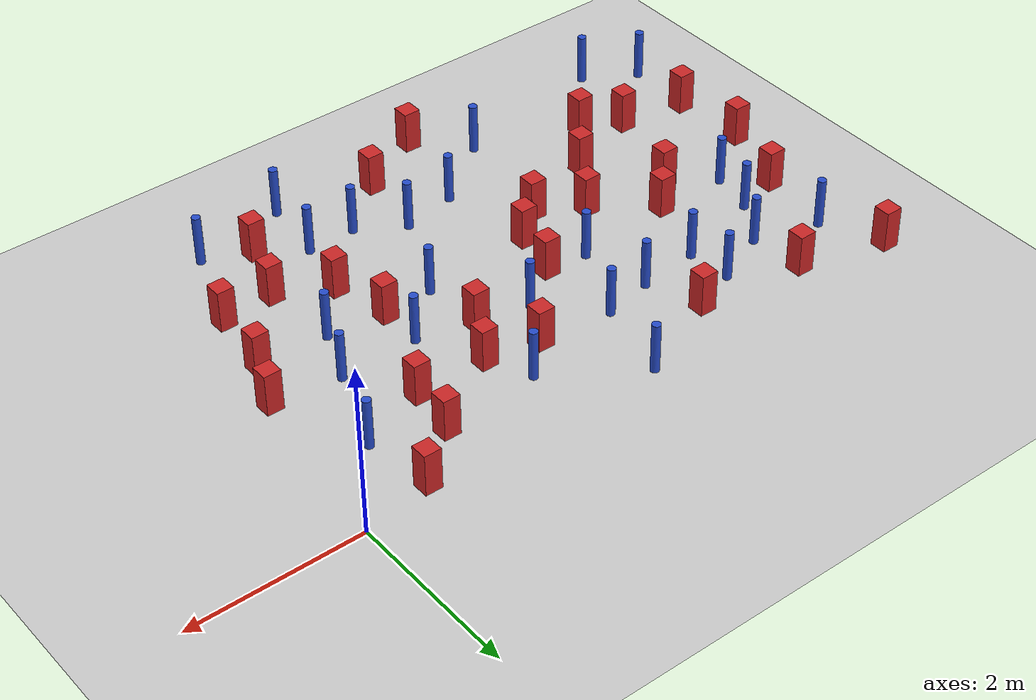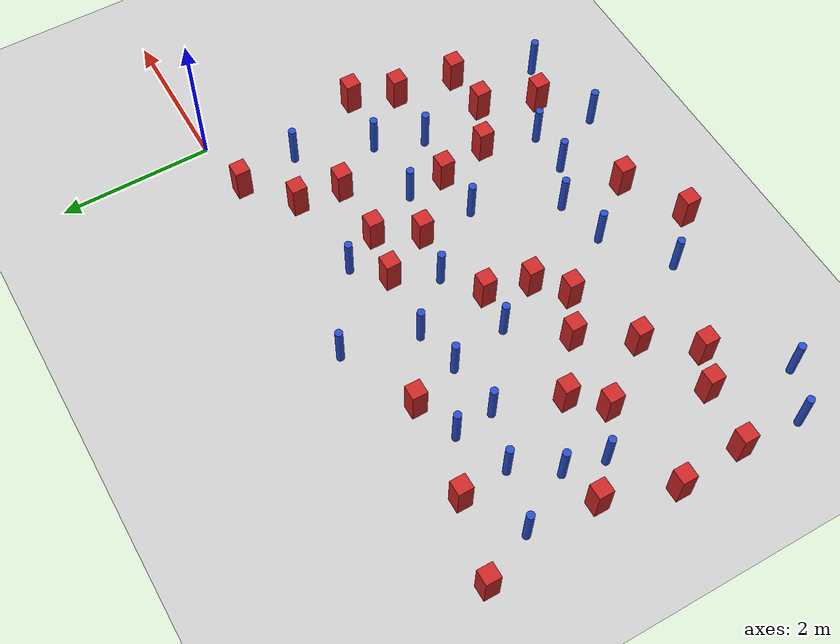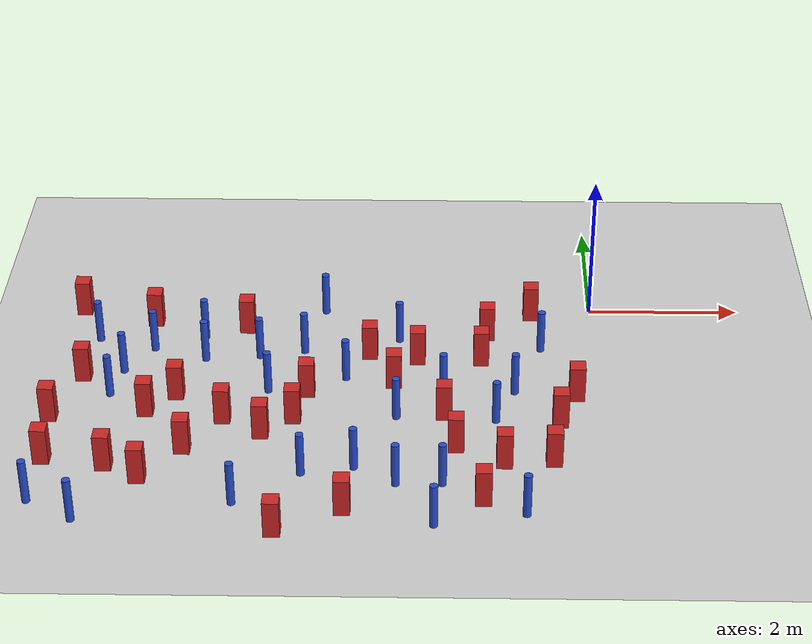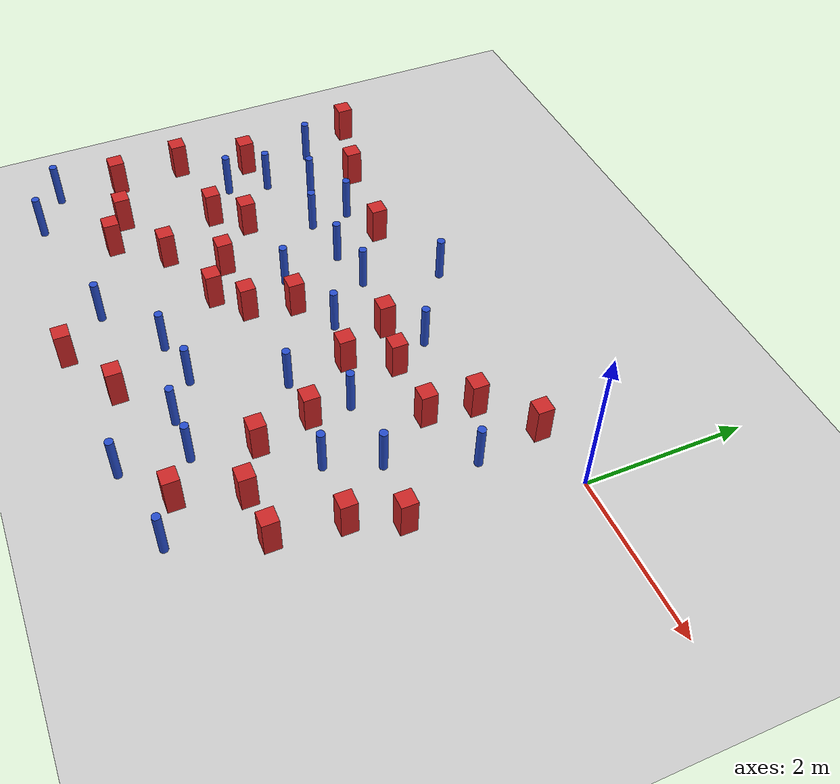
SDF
<sdf version="1.6">
 <world name="default">
  <model name="ground_plane">
   <static>1</static>
   <link name="link">
    <collision name="collision">
     <geometry><plane><normal>0 0 1</normal><size>100 100</size></plane></geometry>
     <surface><friction><ode><mu>100</mu><mu2>50</mu2></ode></friction></surface>
    </collision>
    <visual name="visual">
     <cast_shadows>0</cast_shadows>
     <geometry><plane><normal>0 0 1</normal><size>100 100</size></plane></geometry>
     <material>
      <ambient>1.0 1.0 1.0 1.0</ambient>
      <diffuse>0.8 0.8 0.8 1.0</diffuse>
      <specular>0.01 0.01 0.01 1.000000</specular>
     </material>
    </visual>
   </link>
  </model>
  <model name="square_post_obstacle6">
   <static>true</static>
   <pose>-5.69873190846 -3.81089866101 8.22691968438e-08 7.2212513382e-06 -7.54495500217e-07 2.29674213826e-05</pose>
   <link name="link">
    <pose>0 0 0.25 0 -0 0</pose>
    <inertial>
     <mass>100</mass>
     <inertia>
      <ixx>0.166667</ixx>
      <ixy>0</ixy>
      <ixz>0</ixz>
      <iyy>0.166667</iyy>
      <iyz>0</iyz>
      <izz>0.166667</izz>
     </inertia>
    </inertial>
    <collision name="collision"><geometry><box><size>.2 .2 .5</size></box></geometry></collision>
    <visual name="visual">
     <geometry><box><size>.2 .2 .5</size></box></geometry>
     <material>
      <script><name>Gazebo/Red</name><uri>file://media/materials/scripts/gazebo.material</uri></script>
     </material>
    </visual>
   </link>
  </model>
  <model name="pole_obstacle7">
   <static>true</static>
   <pose>-4.51328137769 -4.27017657904 2.88873142074e-08 -9.90536690842e-09 4.60219948965e-07 -1.20965994976e-07</pose>
   <link name="link">
    <pose>0 0 0.3 0 -0 0</pose>
    <inertial>
     <mass>1</mass>
     <inertia><ixx>0.145833</ixx><ixy>0</ixy><ixz>0</ixz><iyy>0.145833</iyy><iyz>0</iyz><izz>0.125</izz></inertia>
    </inertial>
    <collision name="collision">
     <geometry><cylinder><radius>0.05</radius><length>.6</length></cylinder></geometry>
    </collision>
    <visual name="visual">
     <geometry><cylinder><radius>0.05</radius><length>.6</length></cylinder></geometry>
     <material>
      <script><name>Gazebo/Blue</name><uri>file://media/materials/scripts/gazebo.material</uri></script>
     </material>
    </visual>
   </link>
  </model>
  <model name="square_post_obstacle9">
   <static>true</static>
   <pose>-0.614013611077 -3.40406688637 8.22691968438e-08 7.2212513382e-06 -7.54495500217e-07 2.29674213826e-05</pose>
   <link name="link">
    <pose>0 0 0.25 0 -0 0</pose>
    <inertial>
     <mass>100</mass>
     <inertia>
      <ixx>0.166667</ixx>
      <ixy>0</ixy>
      <ixz>0</ixz>
      <iyy>0.166667</iyy>
      <iyz>0</iyz>
      <izz>0.166667</izz>
     </inertia>
    </inertial>
    <collision name="collision"><geometry><box><size>.2 .2 .5</size></box></geometry></collision>
    <visual name="visual">
     <geometry><box><size>.2 .2 .5</size></box></geometry>
     <material>
      <script><name>Gazebo/Red</name><uri>file://media/materials/scripts/gazebo.material</uri></script>
     </material>
    </visual>
   </link>
  </model>
  <model name="square_post_obstacle10">
   <static>true</static>
   <pose>-0.503892283622 -2.59505104395 8.22691968438e-08 7.2212513382e-06 -7.54495500217e-07 2.29674213826e-05</pose>
   <link name="link">
    <pose>0 0 0.25 0 -0 0</pose>
    <inertial>
     <mass>100</mass>
     <inertia>
      <ixx>0.166667</ixx>
      <ixy>0</ixy>
      <ixz>0</ixz>
      <iyy>0.166667</iyy>
      <iyz>0</iyz>
      <izz>0.166667</izz>
     </inertia>
    </inertial>
    <collision name="collision"><geometry><box><size>.2 .2 .5</size></box></geometry></collision>
    <visual name="visual">
     <geometry><box><size>.2 .2 .5</size></box></geometry>
     <material>
      <script><name>Gazebo/Red</name><uri>file://media/materials/scripts/gazebo.material</uri></script>
     </material>
    </visual>
   </link>
  </model>
  <model name="pole_obstacle8">
   <static>true</static>
   <pose>-2.55678211744 -3.87267501913 2.88873142074e-08 -9.90536690232e-09 4.6021994898e-07 -1.20965994968e-07</pose>
   <link name="link">
    <pose>0 0 0.3 0 -0 0</pose>
    <inertial>
     <mass>1</mass>
     <inertia><ixx>0.145833</ixx><ixy>0</ixy><ixz>0</ixz><iyy>0.145833</iyy><iyz>0</iyz><izz>0.125</izz></inertia>
    </inertial>
    <collision name="collision">
     <geometry><cylinder><radius>0.05</radius><length>.6</length></cylinder></geometry>
    </collision>
    <visual name="visual">
     <geometry><cylinder><radius>0.05</radius><length>.6</length></cylinder></geometry>
     <material>
      <script><name>Gazebo/Blue</name><uri>file://media/materials/scripts/gazebo.material</uri></script>
     </material>
    </visual>
   </link>
  </model>
  <model name="square_post_obstacle26">
   <static>true</static>
   <pose>-1.82232135898 -3.12841013178 8.22691968438e-08 7.2212513382e-06 -7.54495500217e-07 2.29674213826e-05</pose>
   <link name="link">
    <pose>0 0 0.25 0 -0 0</pose>
    <inertial>
     <mass>100</mass>
     <inertia>
      <ixx>0.166667</ixx>
      <ixy>0</ixy>
      <ixz>0</ixz>
      <iyy>0.166667</iyy>
      <iyz>0</iyz>
      <izz>0.166667</izz>
     </inertia>
    </inertial>
    <collision name="collision"><geometry><box><size>.2 .2 .5</size></box></geometry></collision>
    <visual name="visual">
     <geometry><box><size>.2 .2 .5</size></box></geometry>
     <material>
      <script><name>Gazebo/Red</name><uri>file://media/materials/scripts/gazebo.material</uri></script>
     </material>
    </visual>
   </link>
  </model>
  <model name="pole_obstacle18">
   <static>true</static>
   <pose>-4.24357892831 -1.94384267663 2.88873142074e-08 -9.90536689445e-09 4.60219948999e-07 -1.20965994956e-07</pose>
   <link name="link">
    <pose>0 0 0.3 0 -0 0</pose>
    <inertial>
     <mass>1</mass>
     <inertia><ixx>0.145833</ixx><ixy>0</ixy><ixz>0</ixz><iyy>0.145833</iyy><iyz>0</iyz><izz>0.125</izz></inertia>
    </inertial>
    <collision name="collision">
     <geometry><cylinder><radius>0.05</radius><length>.6</length></cylinder></geometry>
    </collision>
    <visual name="visual">
     <geometry><cylinder><radius>0.05</radius><length>.6</length></cylinder></geometry>
     <material>
      <script><name>Gazebo/Blue</name><uri>file://media/materials/scripts/gazebo.material</uri></script>
     </material>
    </visual>
   </link>
  </model>
  <model name="pole_obstacle25">
   <static>true</static>
   <pose>-3.82425622848 -1.03552538022 2.88873142074e-08 -9.90536691093e-09 4.60219948959e-07 -1.20965994982e-07</pose>
   <link name="link">
    <pose>0 0 0.3 0 -0 0</pose>
    <inertial>
     <mass>1</mass>
     <inertia><ixx>0.145833</ixx><ixy>0</ixy><ixz>0</ixz><iyy>0.145833</iyy><iyz>0</iyz><izz>0.125</izz></inertia>
    </inertial>
    <collision name="collision">
     <geometry><cylinder><radius>0.05</radius><length>.6</length></cylinder></geometry>
    </collision>
    <visual name="visual">
     <geometry><cylinder><radius>0.05</radius><length>.6</length></cylinder></geometry>
     <material>
      <script><name>Gazebo/Blue</name><uri>file://media/materials/scripts/gazebo.material</uri></script>
     </material>
    </visual>
   </link>
  </model>
  <model name="pole_obstacle26">
   <static>true</static>
   <pose>-5.17065001032 -0.723781623459 2.88873142074e-08 -9.90536689837e-09 4.60219948989e-07 -1.2096599496e-07</pose>
   <link name="link">
    <pose>0 0 0.3 0 -0 0</pose>
    <inertial>
     <mass>1</mass>
     <inertia><ixx>0.145833</ixx><ixy>0</ixy><ixz>0</ixz><iyy>0.145833</iyy><iyz>0</iyz><izz>0.125</izz></inertia>
    </inertial>
    <collision name="collision">
     <geometry><cylinder><radius>0.05</radius><length>.6</length></cylinder></geometry>
    </collision>
    <visual name="visual">
     <geometry><cylinder><radius>0.05</radius><length>.6</length></cylinder></geometry>
     <material>
      <script><name>Gazebo/Blue</name><uri>file://media/materials/scripts/gazebo.material</uri></script>
     </material>
    </visual>
   </link>
  </model>
  <model name="square_post_obstacle32">
   <static>true</static>
   <pose>-5.87408960416 -0.360027791746 8.22691968438e-08 7.2212513382e-06 -7.54495500217e-07 2.29674213826e-05</pose>
   <link name="link">
    <pose>0 0 0.25 0 -0 0</pose>
    <inertial>
     <mass>100</mass>
     <inertia>
      <ixx>0.166667</ixx>
      <ixy>0</ixy>
      <ixz>0</ixz>
      <iyy>0.166667</iyy>
      <iyz>0</iyz>
      <izz>0.166667</izz>
     </inertia>
    </inertial>
    <collision name="collision"><geometry><box><size>.2 .2 .5</size></box></geometry></collision>
    <visual name="visual">
     <geometry><box><size>.2 .2 .5</size></box></geometry>
     <material>
      <script><name>Gazebo/Red</name><uri>file://media/materials/scripts/gazebo.material</uri></script>
     </material>
    </visual>
   </link>
  </model>
  <model name="pole_obstacle33">
   <static>true</static>
   <pose>-2.57884508379 -2.49677297623 2.88873142074e-08 -9.90536690232e-09 4.6021994898e-07 -1.20965994968e-07</pose>
   <link name="link">
    <pose>0 0 0.3 0 -0 0</pose>
    <inertial>
     <mass>1</mass>
     <inertia><ixx>0.145833</ixx><ixy>0</ixy><ixz>0</ixz><iyy>0.145833</iyy><iyz>0</iyz><izz>0.125</izz></inertia>
    </inertial>
    <collision name="collision">
     <geometry><cylinder><radius>0.05</radius><length>.6</length></cylinder></geometry>
    </collision>
    <visual name="visual">
     <geometry><cylinder><radius>0.05</radius><length>.6</length></cylinder></geometry>
     <material>
      <script><name>Gazebo/Blue</name><uri>file://media/materials/scripts/gazebo.material</uri></script>
     </material>
    </visual>
   </link>
  </model>
  <model name="square_post_obstacle36">
   <static>true</static>
   <pose>-0.27187774588 -2.02333062128 8.22691968438e-08 7.22125133819e-06 -7.54495500217e-07 2.29674213826e-05</pose>
   <link name="link">
    <pose>0 0 0.25 0 -0 0</pose>
    <inertial>
     <mass>100</mass>
     <inertia>
      <ixx>0.166667</ixx>
      <ixy>0</ixy>
      <ixz>0</ixz>
      <iyy>0.166667</iyy>
      <iyz>0</iyz>
      <izz>0.166667</izz>
     </inertia>
    </inertial>
    <collision name="collision"><geometry><box><size>.2 .2 .5</size></box></geometry></collision>
    <visual name="visual">
     <geometry><box><size>.2 .2 .5</size></box></geometry>
     <material>
      <script><name>Gazebo/Red</name><uri>file://media/materials/scripts/gazebo.material</uri></script>
     </material>
    </visual>
   </link>
  </model>
  <model name="pole_obstacle40">
   <static>true</static>
   <pose>-1.98684152806 -3.86327467305 2.88873142074e-08 -9.90536689218e-09 4.60219949004e-07 -1.20965994951e-07</pose>
   <link name="link">
    <pose>0 0 0.3 0 -0 0</pose>
    <inertial>
     <mass>1</mass>
     <inertia><ixx>0.145833</ixx><ixy>0</ixy><ixz>0</ixz><iyy>0.145833</iyy><iyz>0</iyz><izz>0.125</izz></inertia>
    </inertial>
    <collision name="collision">
     <geometry><cylinder><radius>0.05</radius><length>.6</length></cylinder></geometry>
    </collision>
    <visual name="visual">
     <geometry><cylinder><radius>0.05</radius><length>.6</length></cylinder></geometry>
     <material>
      <script><name>Gazebo/Blue</name><uri>file://media/materials/scripts/gazebo.material</uri></script>
     </material>
    </visual>
   </link>
  </model>
  <model name="square_post_obstacle42">
   <static>true</static>
   <pose>-6.97750307376 -2.55895235686 8.22691968438e-08 7.2212513382e-06 -7.54495500217e-07 2.29674213826e-05</pose>
   <link name="link">
    <pose>0 0 0.25 0 -0 0</pose>
    <inertial>
     <mass>100</mass>
     <inertia>
      <ixx>0.166667</ixx>
      <ixy>0</ixy>
      <ixz>0</ixz>
      <iyy>0.166667</iyy>
      <iyz>0</iyz>
      <izz>0.166667</izz>
     </inertia>
    </inertial>
    <collision name="collision"><geometry><box><size>.2 .2 .5</size></box></geometry></collision>
    <visual name="visual">
     <geometry><box><size>.2 .2 .5</size></box></geometry>
     <material>
      <script><name>Gazebo/Red</name><uri>file://media/materials/scripts/gazebo.material</uri></script>
     </material>
    </visual>
   </link>
  </model>
  <model name="square_post_obstacle48">
   <static>true</static>
   <pose>-0.813177061935 -0.141777122832 8.22691968438e-08 7.22125133819e-06 -7.54495500217e-07 2.29674213826e-05</pose>
   <link name="link">
    <pose>0 0 0.25 0 -0 0</pose>
    <inertial>
     <mass>100</mass>
     <inertia>
      <ixx>0.166667</ixx>
      <ixy>0</ixy>
      <ixz>0</ixz>
      <iyy>0.166667</iyy>
      <iyz>0</iyz>
      <izz>0.166667</izz>
     </inertia>
    </inertial>
    <collision name="collision"><geometry><box><size>.2 .2 .5</size></box></geometry></collision>
    <visual name="visual">
     <geometry><box><size>.2 .2 .5</size></box></geometry>
     <material>
      <script><name>Gazebo/Red</name><uri>file://media/materials/scripts/gazebo.material</uri></script>
     </material>
    </visual>
   </link>
  </model>
  <model name="square_post_obstacle57">
   <static>true</static>
   <pose>-3.18073275149 -4.38452325919 8.22691968438e-08 7.2212513382e-06 -7.54495500217e-07 2.29674213826e-05</pose>
   <link name="link">
    <pose>0 0 0.25 0 -0 0</pose>
    <inertial>
     <mass>100</mass>
     <inertia>
      <ixx>0.166667</ixx>
      <ixy>0</ixy>
      <ixz>0</ixz>
      <iyy>0.166667</iyy>
      <iyz>0</iyz>
      <izz>0.166667</izz>
     </inertia>
    </inertial>
    <collision name="collision"><geometry><box><size>.2 .2 .5</size></box></geometry></collision>
    <visual name="visual">
     <geometry><box><size>.2 .2 .5</size></box></geometry>
     <material>
      <script><name>Gazebo/Red</name><uri>file://media/materials/scripts/gazebo.material</uri></script>
     </material>
    </visual>
   </link>
  </model>
  <model name="pole_obstacle55">
   <static>true</static>
   <pose>-6.57570393735 -0.790925006091 2.88873142074e-08 -9.90536689837e-09 4.60219948989e-07 -1.2096599496e-07</pose>
   <link name="link">
    <pose>0 0 0.3 0 -0 0</pose>
    <inertial>
     <mass>1</mass>
     <inertia><ixx>0.145833</ixx><ixy>0</ixy><ixz>0</ixz><iyy>0.145833</iyy><iyz>0</iyz><izz>0.125</izz></inertia>
    </inertial>
    <collision name="collision">
     <geometry><cylinder><radius>0.05</radius><length>.6</length></cylinder></geometry>
    </collision>
    <visual name="visual">
     <geometry><cylinder><radius>0.05</radius><length>.6</length></cylinder></geometry>
     <material>
      <script><name>Gazebo/Blue</name><uri>file://media/materials/scripts/gazebo.material</uri></script>
     </material>
    </visual>
   </link>
  </model>
  <model name="pole_obstacle63">
   <static>true</static>
   <pose>-0.978577156115 -4.44046367884 2.88873142074e-08 -9.90536689644e-09 4.60219948994e-07 -1.20965994957e-07</pose>
   <link name="link">
    <pose>0 0 0.3 0 -0 0</pose>
    <inertial>
     <mass>1</mass>
     <inertia><ixx>0.145833</ixx><ixy>0</ixy><ixz>0</ixz><iyy>0.145833</iyy><iyz>0</iyz><izz>0.125</izz></inertia>
    </inertial>
    <collision name="collision">
     <geometry><cylinder><radius>0.05</radius><length>.6</length></cylinder></geometry>
    </collision>
    <visual name="visual">
     <geometry><cylinder><radius>0.05</radius><length>.6</length></cylinder></geometry>
     <material>
      <script><name>Gazebo/Blue</name><uri>file://media/materials/scripts/gazebo.material</uri></script>
     </material>
    </visual>
   </link>
  </model>
  <model name="square_post_obstacle67">
   <static>true</static>
   <pose>-2.62674946512 -1.75869441663 8.22691968438e-08 7.2212513382e-06 -7.54495500217e-07 2.29674213826e-05</pose>
   <link name="link">
    <pose>0 0 0.25 0 -0 0</pose>
    <inertial>
     <mass>100</mass>
     <inertia>
      <ixx>0.166667</ixx>
      <ixy>0</ixy>
      <ixz>0</ixz>
      <iyy>0.166667</iyy>
      <iyz>0</iyz>
      <izz>0.166667</izz>
     </inertia>
    </inertial>
    <collision name="collision"><geometry><box><size>.2 .2 .5</size></box></geometry></collision>
    <visual name="visual">
     <geometry><box><size>.2 .2 .5</size></box></geometry>
     <material>
      <script><name>Gazebo/Red</name><uri>file://media/materials/scripts/gazebo.material</uri></script>
     </material>
    </visual>
   </link>
  </model>
  <model name="pole_obstacle65">
   <static>true</static>
   <pose>-0.701812578569 -0.949973994565 2.88873142074e-08 -9.90536689967e-09 4.60219948986e-07 -1.20965994963e-07</pose>
   <link name="link">
    <pose>0 0 0.3 0 -0 0</pose>
    <inertial>
     <mass>1</mass>
     <inertia><ixx>0.145833</ixx><ixy>0</ixy><ixz>0</ixz><iyy>0.145833</iyy><iyz>0</iyz><izz>0.125</izz></inertia>
    </inertial>
    <collision name="collision">
     <geometry><cylinder><radius>0.05</radius><length>.6</length></cylinder></geometry>
    </collision>
    <visual name="visual">
     <geometry><cylinder><radius>0.05</radius><length>.6</length></cylinder></geometry>
     <material>
      <script><name>Gazebo/Blue</name><uri>file://media/materials/scripts/gazebo.material</uri></script>
     </material>
    </visual>
   </link>
  </model>
  <model name="square_post_obstacle73">
   <static>true</static>
   <pose>-5.41644284443 -2.05901209092 8.22691968438e-08 7.2212513382e-06 -7.54495500217e-07 2.29674213826e-05</pose>
   <link name="link">
    <pose>0 0 0.25 0 -0 0</pose>
    <inertial>
     <mass>100</mass>
     <inertia>
      <ixx>0.166667</ixx>
      <ixy>0</ixy>
      <ixz>0</ixz>
      <iyy>0.166667</iyy>
      <iyz>0</iyz>
      <izz>0.166667</izz>
     </inertia>
    </inertial>
    <collision name="collision"><geometry><box><size>.2 .2 .5</size></box></geometry></collision>
    <visual name="visual">
     <geometry><box><size>.2 .2 .5</size></box></geometry>
     <material>
      <script><name>Gazebo/Red</name><uri>file://media/materials/scripts/gazebo.material</uri></script>
     </material>
    </visual>
   </link>
  </model>
  <model name="square_post_obstacle77">
   <static>true</static>
   <pose>-5.21612428168 -3.21600203299 8.22691968438e-08 7.2212513382e-06 -7.54495500217e-07 2.29674213826e-05</pose>
   <link name="link">
    <pose>0 0 0.25 0 -0 0</pose>
    <inertial>
     <mass>100</mass>
     <inertia>
      <ixx>0.166667</ixx>
      <ixy>0</ixy>
      <ixz>0</ixz>
      <iyy>0.166667</iyy>
      <iyz>0</iyz>
      <izz>0.166667</izz>
     </inertia>
    </inertial>
    <collision name="collision"><geometry><box><size>.2 .2 .5</size></box></geometry></collision>
    <visual name="visual">
     <geometry><box><size>.2 .2 .5</size></box></geometry>
     <material>
      <script><name>Gazebo/Red</name><uri>file://media/materials/scripts/gazebo.material</uri></script>
     </material>
    </visual>
   </link>
  </model>
  <model name="pole_obstacle96">
   <static>true</static>
   <pose>-2.08564092657 -4.65510056556 2.88873142074e-08 -9.90536689859e-09 4.60219948989e-07 -1.20965994961e-07</pose>
   <link name="link">
    <pose>0 0 0.3 0 -0 0</pose>
    <inertial>
     <mass>1</mass>
     <inertia><ixx>0.145833</ixx><ixy>0</ixy><ixz>0</ixz><iyy>0.145833</iyy><iyz>0</iyz><izz>0.125</izz></inertia>
    </inertial>
    <collision name="collision">
     <geometry><cylinder><radius>0.05</radius><length>.6</length></cylinder></geometry>
    </collision>
    <visual name="visual">
     <geometry><cylinder><radius>0.05</radius><length>.6</length></cylinder></geometry>
     <material>
      <script><name>Gazebo/Blue</name><uri>file://media/materials/scripts/gazebo.material</uri></script>
     </material>
    </visual>
   </link>
  </model>
  <model name="square_post_obstacle86">
   <static>true</static>
   <pose>-1.22666639664 -3.4462749645 8.22691968438e-08 7.2212513382e-06 -7.54495500217e-07 2.29674213826e-05</pose>
   <link name="link">
    <pose>0 0 0.25 0 -0 0</pose>
    <inertial>
     <mass>100</mass>
     <inertia>
      <ixx>0.166667</ixx>
      <ixy>0</ixy>
      <ixz>0</ixz>
      <iyy>0.166667</iyy>
      <iyz>0</iyz>
      <izz>0.166667</izz>
     </inertia>
    </inertial>
    <collision name="collision"><geometry><box><size>.2 .2 .5</size></box></geometry></collision>
    <visual name="visual">
     <geometry><box><size>.2 .2 .5</size></box></geometry>
     <material>
      <script><name>Gazebo/Red</name><uri>file://media/materials/scripts/gazebo.material</uri></script>
     </material>
    </visual>
   </link>
  </model>
  <model name="pole_obstacle107">
   <static>true</static>
   <pose>-6.97328090866 -4.26708817607 2.88873142074e-08 -9.90536690842e-09 4.60219948965e-07 -1.20965994976e-07</pose>
   <link name="link">
    <pose>0 0 0.3 0 -0 0</pose>
    <inertial>
     <mass>1</mass>
     <inertia><ixx>0.145833</ixx><ixy>0</ixy><ixz>0</ixz><iyy>0.145833</iyy><iyz>0</iyz><izz>0.125</izz></inertia>
    </inertial>
    <collision name="collision">
     <geometry><cylinder><radius>0.05</radius><length>.6</length></cylinder></geometry>
    </collision>
    <visual name="visual">
     <geometry><cylinder><radius>0.05</radius><length>.6</length></cylinder></geometry>
     <material>
      <script><name>Gazebo/Blue</name><uri>file://media/materials/scripts/gazebo.material</uri></script>
     </material>
    </visual>
   </link>
  </model>
  <model name="pole_obstacle109">
   <static>true</static>
   <pose>-2.57322259227 -0.74739674776 2.88873142074e-08 -9.90536689285e-09 4.60219949002e-07 -1.20965994953e-07</pose>
   <link name="link">
    <pose>0 0 0.3 0 -0 0</pose>
    <inertial>
     <mass>1</mass>
     <inertia><ixx>0.145833</ixx><ixy>0</ixy><ixz>0</ixz><iyy>0.145833</iyy><iyz>0</iyz><izz>0.125</izz></inertia>
    </inertial>
    <collision name="collision">
     <geometry><cylinder><radius>0.05</radius><length>.6</length></cylinder></geometry>
    </collision>
    <visual name="visual">
     <geometry><cylinder><radius>0.05</radius><length>.6</length></cylinder></geometry>
     <material>
      <script><name>Gazebo/Blue</name><uri>file://media/materials/scripts/gazebo.material</uri></script>
     </material>
    </visual>
   </link>
  </model>
  <model name="pole_obstacle110">
   <static>true</static>
   <pose>-3.59084202007 -0.0688597408715 2.88873142074e-08 -9.90536689519e-09 4.60219948997e-07 -1.20965994957e-07</pose>
   <link name="link">
    <pose>0 0 0.3 0 -0 0</pose>
    <inertial>
     <mass>1</mass>
     <inertia><ixx>0.145833</ixx><ixy>0</ixy><ixz>0</ixz><iyy>0.145833</iyy><iyz>0</iyz><izz>0.125</izz></inertia>
    </inertial>
    <collision name="collision">
     <geometry><cylinder><radius>0.05</radius><length>.6</length></cylinder></geometry>
    </collision>
    <visual name="visual">
     <geometry><cylinder><radius>0.05</radius><length>.6</length></cylinder></geometry>
     <material>
      <script><name>Gazebo/Blue</name><uri>file://media/materials/scripts/gazebo.material</uri></script>
     </material>
    </visual>
   </link>
  </model>
  <model name="square_post_obstacle104">
   <static>true</static>
   <pose>-4.77481216794 -2.57533071951 8.22691968438e-08 7.2212513382e-06 -7.54495500217e-07 2.29674213826e-05</pose>
   <link name="link">
    <pose>0 0 0.25 0 -0 0</pose>
    <inertial>
     <mass>100</mass>
     <inertia>
      <ixx>0.166667</ixx>
      <ixy>0</ixy>
      <ixz>0</ixz>
      <iyy>0.166667</iyy>
      <iyz>0</iyz>
      <izz>0.166667</izz>
     </inertia>
    </inertial>
    <collision name="collision"><geometry><box><size>.2 .2 .5</size></box></geometry></collision>
    <visual name="visual">
     <geometry><box><size>.2 .2 .5</size></box></geometry>
     <material>
      <script><name>Gazebo/Red</name><uri>file://media/materials/scripts/gazebo.material</uri></script>
     </material>
    </visual>
   </link>
  </model>
  <model name="square_post_obstacle106">
   <static>true</static>
   <pose>-1.40864321477 -0.639657173095 8.22691968438e-08 7.2212513382e-06 -7.54495500217e-07 2.29674213826e-05</pose>
   <link name="link">
    <pose>0 0 0.25 0 -0 0</pose>
    <inertial>
     <mass>100</mass>
     <inertia>
      <ixx>0.166667</ixx>
      <ixy>0</ixy>
      <ixz>0</ixz>
      <iyy>0.166667</iyy>
      <iyz>0</iyz>
      <izz>0.166667</izz>
     </inertia>
    </inertial>
    <collision name="collision"><geometry><box><size>.2 .2 .5</size></box></geometry></collision>
    <visual name="visual">
     <geometry><box><size>.2 .2 .5</size></box></geometry>
     <material>
      <script><name>Gazebo/Red</name><uri>file://media/materials/scripts/gazebo.material</uri></script>
     </material>
    </visual>
   </link>
  </model>
  <model name="pole_obstacle121">
   <static>true</static>
   <pose>-5.11932090497 -1.23804963793 2.88873142074e-08 -9.90536689445e-09 4.60219948999e-07 -1.20965994956e-07</pose>
   <link name="link">
    <pose>0 0 0.3 0 -0 0</pose>
    <inertial>
     <mass>1</mass>
     <inertia><ixx>0.145833</ixx><ixy>0</ixy><ixz>0</ixz><iyy>0.145833</iyy><iyz>0</iyz><izz>0.125</izz></inertia>
    </inertial>
    <collision name="collision">
     <geometry><cylinder><radius>0.05</radius><length>.6</length></cylinder></geometry>
    </collision>
    <visual name="visual">
     <geometry><cylinder><radius>0.05</radius><length>.6</length></cylinder></geometry>
     <material>
      <script><name>Gazebo/Blue</name><uri>file://media/materials/scripts/gazebo.material</uri></script>
     </material>
    </visual>
   </link>
  </model>
  <model name="pole_obstacle122">
   <static>true</static>
   <pose>-6.38679681634 -4.61483916623 2.88873142074e-08 -9.90536690842e-09 4.60219948965e-07 -1.20965994976e-07</pose>
   <link name="link">
    <pose>0 0 0.3 0 -0 0</pose>
    <inertial>
     <mass>1</mass>
     <inertia><ixx>0.145833</ixx><ixy>0</ixy><ixz>0</ixz><iyy>0.145833</iyy><iyz>0</iyz><izz>0.125</izz></inertia>
    </inertial>
    <collision name="collision">
     <geometry><cylinder><radius>0.05</radius><length>.6</length></cylinder></geometry>
    </collision>
    <visual name="visual">
     <geometry><cylinder><radius>0.05</radius><length>.6</length></cylinder></geometry>
     <material>
      <script><name>Gazebo/Blue</name><uri>file://media/materials/scripts/gazebo.material</uri></script>
     </material>
    </visual>
   </link>
  </model>
  <model name="pole_obstacle123">
   <static>true</static>
   <pose>-1.06729200716 -1.93383767326 2.88873142074e-08 -9.90536689672e-09 4.60219948993e-07 -1.20965994959e-07</pose>
   <link name="link">
    <pose>0 0 0.3 0 -0 0</pose>
    <inertial>
     <mass>1</mass>
     <inertia><ixx>0.145833</ixx><ixy>0</ixy><ixz>0</ixz><iyy>0.145833</iyy><iyz>0</iyz><izz>0.125</izz></inertia>
    </inertial>
    <collision name="collision">
     <geometry><cylinder><radius>0.05</radius><length>.6</length></cylinder></geometry>
    </collision>
    <visual name="visual">
     <geometry><cylinder><radius>0.05</radius><length>.6</length></cylinder></geometry>
     <material>
      <script><name>Gazebo/Blue</name><uri>file://media/materials/scripts/gazebo.material</uri></script>
     </material>
    </visual>
   </link>
  </model>
  <model name="pole_obstacle128">
   <static>true</static>
   <pose>-1.31642154477 -2.55709417675 2.88873142074e-08 -9.90536689791e-09 4.6021994899e-07 -1.20965994959e-07</pose>
   <link name="link">
    <pose>0 0 0.3 0 -0 0</pose>
    <inertial>
     <mass>1</mass>
     <inertia><ixx>0.145833</ixx><ixy>0</ixy><ixz>0</ixz><iyy>0.145833</iyy><iyz>0</iyz><izz>0.125</izz></inertia>
    </inertial>
    <collision name="collision">
     <geometry><cylinder><radius>0.05</radius><length>.6</length></cylinder></geometry>
    </collision>
    <visual name="visual">
     <geometry><cylinder><radius>0.05</radius><length>.6</length></cylinder></geometry>
     <material>
      <script><name>Gazebo/Blue</name><uri>file://media/materials/scripts/gazebo.material</uri></script>
     </material>
    </visual>
   </link>
  </model>
  <model name="square_post_obstacle114">
   <static>true</static>
   <pose>-1.4923763896 -4.18818317156 8.22691968438e-08 7.2212513382e-06 -7.54495500217e-07 2.29674213826e-05</pose>
   <link name="link">
    <pose>0 0 0.25 0 -0 0</pose>
    <inertial>
     <mass>100</mass>
     <inertia>
      <ixx>0.166667</ixx>
      <ixy>0</ixy>
      <ixz>0</ixz>
      <iyy>0.166667</iyy>
      <iyz>0</iyz>
      <izz>0.166667</izz>
     </inertia>
    </inertial>
    <collision name="collision"><geometry><box><size>.2 .2 .5</size></box></geometry></collision>
    <visual name="visual">
     <geometry><box><size>.2 .2 .5</size></box></geometry>
     <material>
      <script><name>Gazebo/Red</name><uri>file://media/materials/scripts/gazebo.material</uri></script>
     </material>
    </visual>
   </link>
  </model>
  <model name="pole_obstacle132">
   <static>true</static>
   <pose>-6.27470755085 -2.05449494035 2.88873142074e-08 -9.90536690245e-09 4.6021994898e-07 -1.20965994966e-07</pose>
   <link name="link">
    <pose>0 0 0.3 0 -0 0</pose>
    <inertial>
     <mass>1</mass>
     <inertia><ixx>0.145833</ixx><ixy>0</ixy><ixz>0</ixz><iyy>0.145833</iyy><iyz>0</iyz><izz>0.125</izz></inertia>
    </inertial>
    <collision name="collision">
     <geometry><cylinder><radius>0.05</radius><length>.6</length></cylinder></geometry>
    </collision>
    <visual name="visual">
     <geometry><cylinder><radius>0.05</radius><length>.6</length></cylinder></geometry>
     <material>
      <script><name>Gazebo/Blue</name><uri>file://media/materials/scripts/gazebo.material</uri></script>
     </material>
    </visual>
   </link>
  </model>
  <model name="square_post_obstacle116">
   <static>true</static>
   <pose>-2.95667685113 -1.1071653595 8.22691968438e-08 7.2212513382e-06 -7.54495500217e-07 2.29674213826e-05</pose>
   <link name="link">
    <pose>0 0 0.25 0 -0 0</pose>
    <inertial>
     <mass>100</mass>
     <inertia>
      <ixx>0.166667</ixx>
      <ixy>0</ixy>
      <ixz>0</ixz>
      <iyy>0.166667</iyy>
      <iyz>0</iyz>
      <izz>0.166667</izz>
     </inertia>
    </inertial>
    <collision name="collision"><geometry><box><size>.2 .2 .5</size></box></geometry></collision>
    <visual name="visual">
     <geometry><box><size>.2 .2 .5</size></box></geometry>
     <material>
      <script><name>Gazebo/Red</name><uri>file://media/materials/scripts/gazebo.material</uri></script>
     </material>
    </visual>
   </link>
  </model>
  <model name="square_post_obstacle124">
   <static>true</static>
   <pose>-1.97338179328 -2.44893199938 8.22691968438e-08 7.2212513382e-06 -7.54495500217e-07 2.29674213826e-05</pose>
   <link name="link">
    <pose>0 0 0.25 0 -0 0</pose>
    <inertial>
     <mass>100</mass>
     <inertia>
      <ixx>0.166667</ixx>
      <ixy>0</ixy>
      <ixz>0</ixz>
      <iyy>0.166667</iyy>
      <iyz>0</iyz>
      <izz>0.166667</izz>
     </inertia>
    </inertial>
    <collision name="collision"><geometry><box><size>.2 .2 .5</size></box></geometry></collision>
    <visual name="visual">
     <geometry><box><size>.2 .2 .5</size></box></geometry>
     <material>
      <script><name>Gazebo/Red</name><uri>file://media/materials/scripts/gazebo.material</uri></script>
     </material>
    </visual>
   </link>
  </model>
  <model name="square_post_obstacle128">
   <static>true</static>
   <pose>-6.92131886979 -3.4451666778 8.22691968438e-08 7.2212513382e-06 -7.54495500217e-07 2.29674213826e-05</pose>
   <link name="link">
    <pose>0 0 0.25 0 -0 0</pose>
    <inertial>
     <mass>100</mass>
     <inertia>
      <ixx>0.166667</ixx>
      <ixy>0</ixy>
      <ixz>0</ixz>
      <iyy>0.166667</iyy>
      <iyz>0</iyz>
      <izz>0.166667</izz>
     </inertia>
    </inertial>
    <collision name="collision"><geometry><box><size>.2 .2 .5</size></box></geometry></collision>
    <visual name="visual">
     <geometry><box><size>.2 .2 .5</size></box></geometry>
     <material>
      <script><name>Gazebo/Red</name><uri>file://media/materials/scripts/gazebo.material</uri></script>
     </material>
    </visual>
   </link>
  </model>
  <model name="square_post_obstacle140">
   <static>true</static>
   <pose>-5.76862614304 -2.43051428941 8.22691968438e-08 7.2212513382e-06 -7.54495500217e-07 2.29674213826e-05</pose>
   <link name="link">
    <pose>0 0 0.25 0 -0 0</pose>
    <inertial>
     <mass>100</mass>
     <inertia>
      <ixx>0.166667</ixx>
      <ixy>0</ixy>
      <ixz>0</ixz>
      <iyy>0.166667</iyy>
      <iyz>0</iyz>
      <izz>0.166667</izz>
     </inertia>
    </inertial>
    <collision name="collision"><geometry><box><size>.2 .2 .5</size></box></geometry></collision>
    <visual name="visual">
     <geometry><box><size>.2 .2 .5</size></box></geometry>
     <material>
      <script><name>Gazebo/Red</name><uri>file://media/materials/scripts/gazebo.material</uri></script>
     </material>
    </visual>
   </link>
  </model>
  <model name="pole_obstacle150">
   <static>true</static>
   <pose>-3.71978466351 -3.681694421 2.88873142074e-08 -9.90536690232e-09 4.6021994898e-07 -1.20965994968e-07</pose>
   <link name="link">
    <pose>0 0 0.3 0 -0 0</pose>
    <inertial>
     <mass>1</mass>
     <inertia><ixx>0.145833</ixx><ixy>0</ixy><ixz>0</ixz><iyy>0.145833</iyy><iyz>0</iyz><izz>0.125</izz></inertia>
    </inertial>
    <collision name="collision">
     <geometry><cylinder><radius>0.05</radius><length>.6</length></cylinder></geometry>
    </collision>
    <visual name="visual">
     <geometry><cylinder><radius>0.05</radius><length>.6</length></cylinder></geometry>
     <material>
      <script><name>Gazebo/Blue</name><uri>file://media/materials/scripts/gazebo.material</uri></script>
     </material>
    </visual>
   </link>
  </model>
  <model name="square_post_obstacle145">
   <static>true</static>
   <pose>-1.4929611569 -1.23039368879 8.22691968438e-08 7.2212513382e-06 -7.54495500217e-07 2.29674213826e-05</pose>
   <link name="link">
    <pose>0 0 0.25 0 -0 0</pose>
    <inertial>
     <mass>100</mass>
     <inertia>
      <ixx>0.166667</ixx>
      <ixy>0</ixy>
      <ixz>0</ixz>
      <iyy>0.166667</iyy>
      <iyz>0</iyz>
      <izz>0.166667</izz>
     </inertia>
    </inertial>
    <collision name="collision"><geometry><box><size>.2 .2 .5</size></box></geometry></collision>
    <visual name="visual">
     <geometry><box><size>.2 .2 .5</size></box></geometry>
     <material>
      <script><name>Gazebo/Red</name><uri>file://media/materials/scripts/gazebo.material</uri></script>
     </material>
    </visual>
   </link>
  </model>
  <model name="square_post_obstacle149">
   <static>true</static>
   <pose>-4.2704252656 -2.88168327435 8.22691968438e-08 7.2212513382e-06 -7.54495500217e-07 2.29674213826e-05</pose>
   <link name="link">
    <pose>0 0 0.25 0 -0 0</pose>
    <inertial>
     <mass>100</mass>
     <inertia>
      <ixx>0.166667</ixx>
      <ixy>0</ixy>
      <ixz>0</ixz>
      <iyy>0.166667</iyy>
      <iyz>0</iyz>
      <izz>0.166667</izz>
     </inertia>
    </inertial>
    <collision name="collision"><geometry><box><size>.2 .2 .5</size></box></geometry></collision>
    <visual name="visual">
     <geometry><box><size>.2 .2 .5</size></box></geometry>
     <material>
      <script><name>Gazebo/Red</name><uri>file://media/materials/scripts/gazebo.material</uri></script>
     </material>
    </visual>
   </link>
  </model>
  <model name="square_post_obstacle160">
   <static>true</static>
   <pose>-2.32559100175 -1.22644293528 8.22691968438e-08 7.2212513382e-06 -7.54495500217e-07 2.29674213826e-05</pose>
   <link name="link">
    <pose>0 0 0.25 0 -0 0</pose>
    <inertial>
     <mass>100</mass>
     <inertia>
      <ixx>0.166667</ixx>
      <ixy>0</ixy>
      <ixz>0</ixz>
      <iyy>0.166667</iyy>
      <iyz>0</iyz>
      <izz>0.166667</izz>
     </inertia>
    </inertial>
    <collision name="collision"><geometry><box><size>.2 .2 .5</size></box></geometry></collision>
    <visual name="visual">
     <geometry><box><size>.2 .2 .5</size></box></geometry>
     <material>
      <script><name>Gazebo/Red</name><uri>file://media/materials/scripts/gazebo.material</uri></script>
     </material>
    </visual>
   </link>
  </model>
  <model name="pole_obstacle169">
   <static>true</static>
   <pose>-6.16089961108 -1.52770035779 2.88873142074e-08 -9.90536689445e-09 4.60219948999e-07 -1.20965994956e-07</pose>
   <link name="link">
    <pose>0 0 0.3 0 -0 0</pose>
    <inertial>
     <mass>1</mass>
     <inertia><ixx>0.145833</ixx><ixy>0</ixy><ixz>0</ixz><iyy>0.145833</iyy><iyz>0</iyz><izz>0.125</izz></inertia>
    </inertial>
    <collision name="collision">
     <geometry><cylinder><radius>0.05</radius><length>.6</length></cylinder></geometry>
    </collision>
    <visual name="visual">
     <geometry><cylinder><radius>0.05</radius><length>.6</length></cylinder></geometry>
     <material>
      <script><name>Gazebo/Blue</name><uri>file://media/materials/scripts/gazebo.material</uri></script>
     </material>
    </visual>
   </link>
  </model>
  <model name="square_post_obstacle161">
   <static>true</static>
   <pose>-3.74002612433 -1.98519006269 8.22691968438e-08 7.22125133819e-06 -7.54495500217e-07 2.29674213826e-05</pose>
   <link name="link">
    <pose>0 0 0.25 0 -0 0</pose>
    <inertial>
     <mass>100</mass>
     <inertia>
      <ixx>0.166667</ixx>
      <ixy>0</ixy>
      <ixz>0</ixz>
      <iyy>0.166667</iyy>
      <iyz>0</iyz>
      <izz>0.166667</izz>
     </inertia>
    </inertial>
    <collision name="collision"><geometry><box><size>.2 .2 .5</size></box></geometry></collision>
    <visual name="visual">
     <geometry><box><size>.2 .2 .5</size></box></geometry>
     <material>
      <script><name>Gazebo/Red</name><uri>file://media/materials/scripts/gazebo.material</uri></script>
     </material>
    </visual>
   </link>
  </model>
  <model name="square_post_obstacle168">
   <static>true</static>
   <pose>-6.88036000675 -0.0907470362136 8.22691968438e-08 7.2212513382e-06 -7.54495500217e-07 2.29674213826e-05</pose>
   <link name="link">
    <pose>0 0 0.25 0 -0 0</pose>
    <inertial>
     <mass>100</mass>
     <inertia>
      <ixx>0.166667</ixx>
      <ixy>0</ixy>
      <ixz>0</ixz>
      <iyy>0.166667</iyy>
      <iyz>0</iyz>
      <izz>0.166667</izz>
     </inertia>
    </inertial>
    <collision name="collision"><geometry><box><size>.2 .2 .5</size></box></geometry></collision>
    <visual name="visual">
     <geometry><box><size>.2 .2 .5</size></box></geometry>
     <material>
      <script><name>Gazebo/Red</name><uri>file://media/materials/scripts/gazebo.material</uri></script>
     </material>
    </visual>
   </link>
  </model>
  <model name="pole_obstacle182">
   <static>true</static>
   <pose>-3.07444872565 -3.55539582979 2.88873142074e-08 -9.90536690232e-09 4.6021994898e-07 -1.20965994968e-07</pose>
   <link name="link">
    <pose>0 0 0.3 0 -0 0</pose>
    <inertial>
     <mass>1</mass>
     <inertia><ixx>0.145833</ixx><ixy>0</ixy><ixz>0</ixz><iyy>0.145833</iyy><iyz>0</iyz><izz>0.125</izz></inertia>
    </inertial>
    <collision name="collision">
     <geometry><cylinder><radius>0.05</radius><length>.6</length></cylinder></geometry>
    </collision>
    <visual name="visual">
     <geometry><cylinder><radius>0.05</radius><length>.6</length></cylinder></geometry>
     <material>
      <script><name>Gazebo/Blue</name><uri>file://media/materials/scripts/gazebo.material</uri></script>
     </material>
    </visual>
   </link>
  </model>
  <model name="square_post_obstacle185">
   <static>true</static>
   <pose>-3.98318045293 -4.8046609292 8.22691968438e-08 7.2212513382e-06 -7.54495500217e-07 2.29674213826e-05</pose>
   <link name="link">
    <pose>0 0 0.25 0 -0 0</pose>
    <inertial>
     <mass>100</mass>
     <inertia>
      <ixx>0.166667</ixx>
      <ixy>0</ixy>
      <ixz>0</ixz>
      <iyy>0.166667</iyy>
      <iyz>0</iyz>
      <izz>0.166667</izz>
     </inertia>
    </inertial>
    <collision name="collision"><geometry><box><size>.2 .2 .5</size></box></geometry></collision>
    <visual name="visual">
     <geometry><box><size>.2 .2 .5</size></box></geometry>
     <material>
      <script><name>Gazebo/Red</name><uri>file://media/materials/scripts/gazebo.material</uri></script>
     </material>
    </visual>
   </link>
  </model>
  <model name="square_post_obstacle198">
   <static>true</static>
   <pose>-6.66724058356 -1.66485226453 8.22691968438e-08 7.2212513382e-06 -7.54495500217e-07 2.29674213826e-05</pose>
   <link name="link">
    <pose>0 0 0.25 0 -0 0</pose>
    <inertial>
     <mass>100</mass>
     <inertia>
      <ixx>0.166667</ixx>
      <ixy>0</ixy>
      <ixz>0</ixz>
      <iyy>0.166667</iyy>
      <iyz>0</iyz>
      <izz>0.166667</izz>
     </inertia>
    </inertial>
    <collision name="collision"><geometry><box><size>.2 .2 .5</size></box></geometry></collision>
    <visual name="visual">
     <geometry><box><size>.2 .2 .5</size></box></geometry>
     <material>
      <script><name>Gazebo/Red</name><uri>file://media/materials/scripts/gazebo.material</uri></script>
     </material>
    </visual>
   </link>
  </model>
  <model name="square_post_obstacle202">
   <static>true</static>
   <pose>-6.13984067499 -3.56668244201 8.22691968438e-08 7.2212513382e-06 -7.54495500217e-07 2.29674213826e-05</pose>
   <link name="link">
    <pose>0 0 0.25 0 -0 0</pose>
    <inertial>
     <mass>100</mass>
     <inertia>
      <ixx>0.166667</ixx>
      <ixy>0</ixy>
      <ixz>0</ixz>
      <iyy>0.166667</iyy>
      <iyz>0</iyz>
      <izz>0.166667</izz>
     </inertia>
    </inertial>
    <collision name="collision"><geometry><box><size>.2 .2 .5</size></box></geometry></collision>
    <visual name="visual">
     <geometry><box><size>.2 .2 .5</size></box></geometry>
     <material>
      <script><name>Gazebo/Red</name><uri>file://media/materials/scripts/gazebo.material</uri></script>
     </material>
    </visual>
   </link>
  </model>
  <model name="square_post_obstacle203">
   <static>true</static>
   <pose>-3.88420168455 -2.55965904895 8.22691968438e-08 7.2212513382e-06 -7.54495500217e-07 2.29674213826e-05</pose>
   <link name="link">
    <pose>0 0 0.25 0 -0 0</pose>
    <inertial>
     <mass>100</mass>
     <inertia>
      <ixx>0.166667</ixx>
      <ixy>0</ixy>
      <ixz>0</ixz>
      <iyy>0.166667</iyy>
      <iyz>0</iyz>
      <izz>0.166667</izz>
     </inertia>
    </inertial>
    <collision name="collision"><geometry><box><size>.2 .2 .5</size></box></geometry></collision>
    <visual name="visual">
     <geometry><box><size>.2 .2 .5</size></box></geometry>
     <material>
      <script><name>Gazebo/Red</name><uri>file://media/materials/scripts/gazebo.material</uri></script>
     </material>
    </visual>
   </link>
  </model>
  <model name="pole_obstacle189">
   <static>true</static>
   <pose>-4.40647420378 -1.16043922226 2.88873142074e-08 -9.90536689445e-09 4.60219948999e-07 -1.20965994956e-07</pose>
   <link name="link">
    <pose>0 0 0.3 0 -0 0</pose>
    <inertial>
     <mass>1</mass>
     <inertia><ixx>0.145833</ixx><ixy>0</ixy><ixz>0</ixz><iyy>0.145833</iyy><iyz>0</iyz><izz>0.125</izz></inertia>
    </inertial>
    <collision name="collision">
     <geometry><cylinder><radius>0.05</radius><length>.6</length></cylinder></geometry>
    </collision>
    <visual name="visual">
     <geometry><cylinder><radius>0.05</radius><length>.6</length></cylinder></geometry>
     <material>
      <script><name>Gazebo/Blue</name><uri>file://media/materials/scripts/gazebo.material</uri></script>
     </material>
    </visual>
   </link>
  </model>
  <model name="square_post_obstacle204">
   <static>true</static>
   <pose>-4.62319154726 -0.507634639465 8.22691968438e-08 7.2212513382e-06 -7.54495500217e-07 2.29674213826e-05</pose>
   <link name="link">
    <pose>0 0 0.25 0 -0 0</pose>
    <inertial>
     <mass>100</mass>
     <inertia>
      <ixx>0.166667</ixx>
      <ixy>0</ixy>
      <ixz>0</ixz>
      <iyy>0.166667</iyy>
      <iyz>0</iyz>
      <izz>0.166667</izz>
     </inertia>
    </inertial>
    <collision name="collision"><geometry><box><size>.2 .2 .5</size></box></geometry></collision>
    <visual name="visual">
     <geometry><box><size>.2 .2 .5</size></box></geometry>
     <material>
      <script><name>Gazebo/Red</name><uri>file://media/materials/scripts/gazebo.material</uri></script>
     </material>
    </visual>
   </link>
  </model>
  <model name="pole_obstacle198">
   <static>true</static>
   <pose>-3.2507916733 -1.65268014734 2.88873142074e-08 -9.90536689395e-09 4.60219949e-07 -1.20965994953e-07</pose>
   <link name="link">
    <pose>0 0 0.3 0 -0 0</pose>
    <inertial>
     <mass>1</mass>
     <inertia><ixx>0.145833</ixx><ixy>0</ixy><ixz>0</ixz><iyy>0.145833</iyy><iyz>0</iyz><izz>0.125</izz></inertia>
    </inertial>
    <collision name="collision">
     <geometry><cylinder><radius>0.05</radius><length>.6</length></cylinder></geometry>
    </collision>
    <visual name="visual">
     <geometry><cylinder><radius>0.05</radius><length>.6</length></cylinder></geometry>
     <material>
      <script><name>Gazebo/Blue</name><uri>file://media/materials/scripts/gazebo.material</uri></script>
     </material>
    </visual>
   </link>
  </model>
  <model name="pole_obstacle206">
   <static>true</static>
   <pose>-5.81737334453 -1.00604085709 2.88873142074e-08 -9.90536689582e-09 4.60219948995e-07 -1.20965994957e-07</pose>
   <link name="link">
    <pose>0 0 0.3 0 -0 0</pose>
    <inertial>
     <mass>1</mass>
     <inertia><ixx>0.145833</ixx><ixy>0</ixy><ixz>0</ixz><iyy>0.145833</iyy><iyz>0</iyz><izz>0.125</izz></inertia>
    </inertial>
    <collision name="collision">
     <geometry><cylinder><radius>0.05</radius><length>.6</length></cylinder></geometry>
    </collision>
    <visual name="visual">
     <geometry><cylinder><radius>0.05</radius><length>.6</length></cylinder></geometry>
     <material>
      <script><name>Gazebo/Blue</name><uri>file://media/materials/scripts/gazebo.material</uri></script>
     </material>
    </visual>
   </link>
  </model>
  <model name="pole_obstacle217">
   <static>true</static>
   <pose>-1.9854148756 -1.94736309071 2.88873142074e-08 -9.90536690043e-09 4.60219948984e-07 -1.20965994963e-07</pose>
   <link name="link">
    <pose>0 0 0.3 0 -0 0</pose>
    <inertial>
     <mass>1</mass>
     <inertia><ixx>0.145833</ixx><ixy>0</ixy><ixz>0</ixz><iyy>0.145833</iyy><iyz>0</iyz><izz>0.125</izz></inertia>
    </inertial>
    <collision name="collision">
     <geometry><cylinder><radius>0.05</radius><length>.6</length></cylinder></geometry>
    </collision>
    <visual name="visual">
     <geometry><cylinder><radius>0.05</radius><length>.6</length></cylinder></geometry>
     <material>
      <script><name>Gazebo/Blue</name><uri>file://media/materials/scripts/gazebo.material</uri></script>
     </material>
    </visual>
   </link>
  </model>
 </world>
</sdf>
